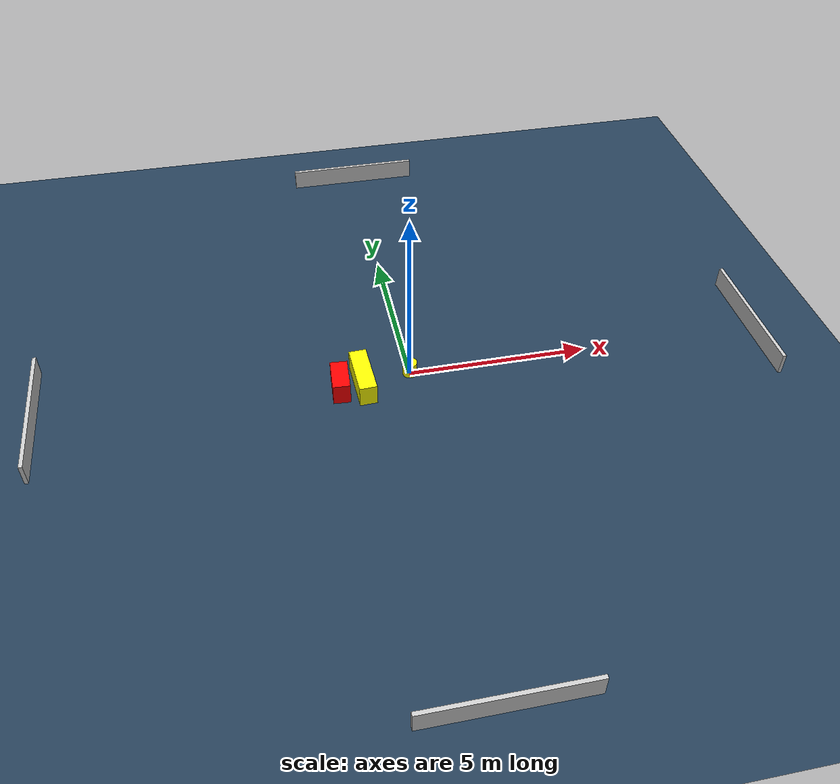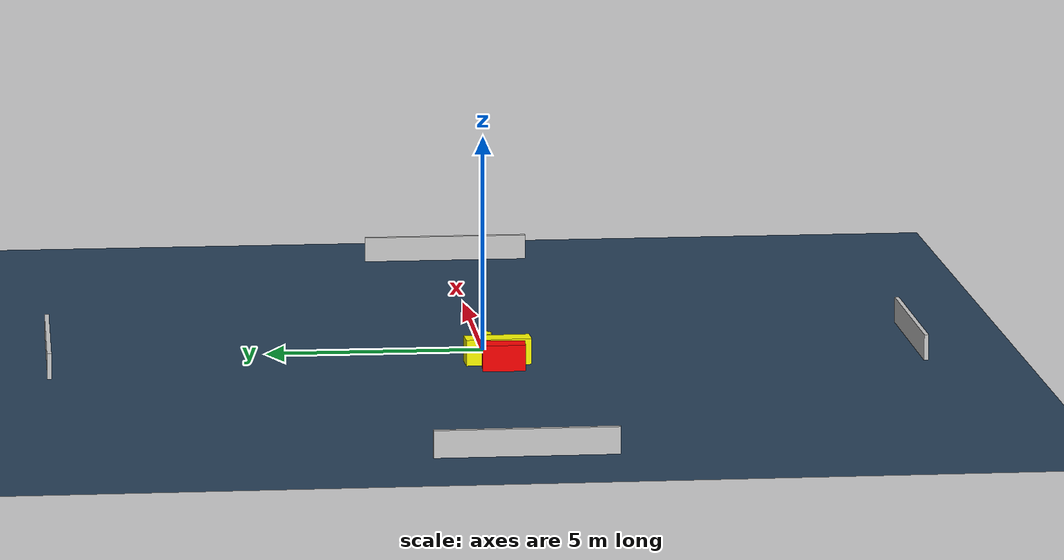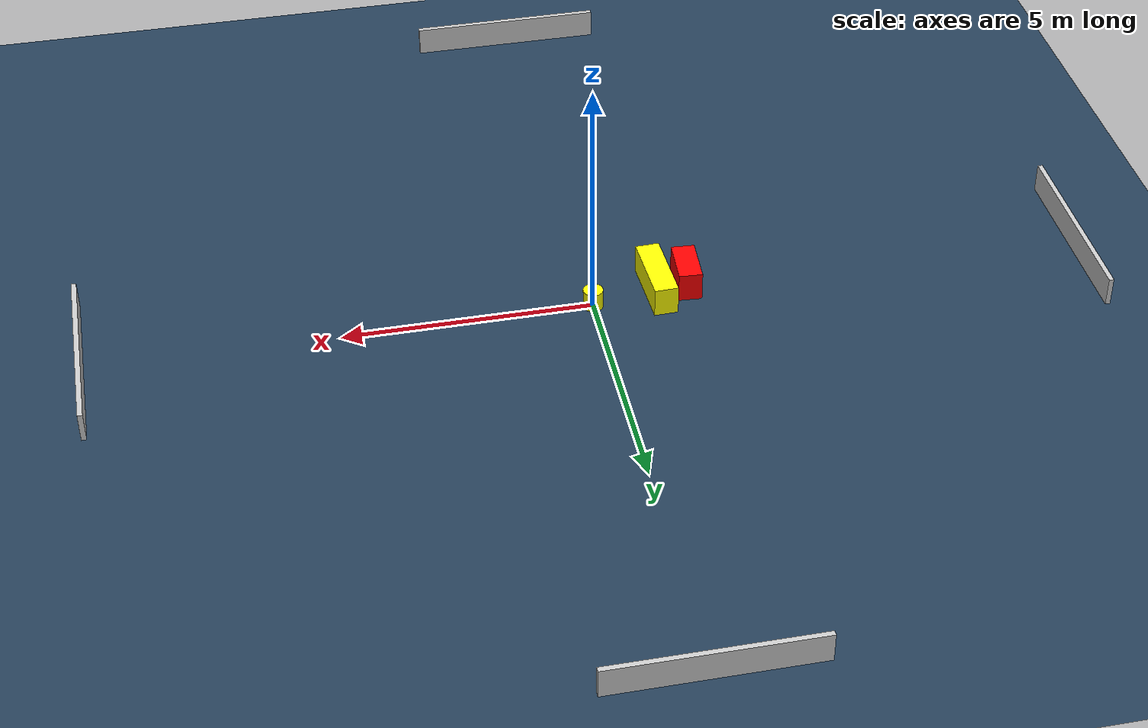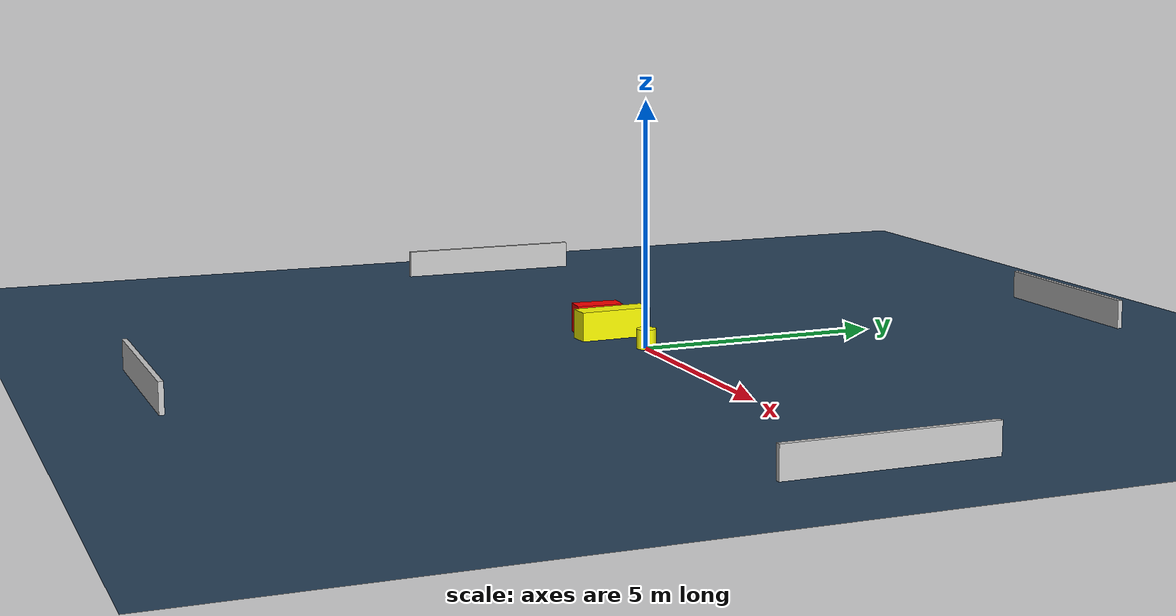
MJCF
<?xml version="1.0" ?>
<mujoco model="generated_environment">
  <option timestep="0.01" integrator="RK4" cone="elliptic"/>
  <default>
    <geom density="1"/>
  </default>
  <asset>
    <texture builtin="gradient" height="3072" name="skybox" rgb1="0.3 0.5 0.7" rgb2="0 0 0" type="skybox" width="512"/>
    <texture builtin="checker" height="300" name="groundplane" rgb1="0.2 0.3 0.4" rgb2="0.1 0.2 0.3" type="2d" width="300"/>
    <material name="groundplane" reflectance="0.2" texrepeat="5 5" texture="groundplane"/>
  </asset>
  <worldbody>
    <light dir="0 0 -1" directional="true" pos="0 0 1.5"/>
    <geom condim="3" friction="0.5 0.005 0.001" material="groundplane" name="floor" pos="0 0 0" size="0 0 0.05" type="plane"/>
    <body name="walls">
      <geom name="wall_1" condim="4" pos="-10.0 0.0 0.3" rgba="0.800000011920929 0.800000011920929 0.800000011920929 1.0" size="0.05 2.0 0.3" type="box"/>
      <geom name="wall_2" condim="4" pos="10.0 0.0 0.3" rgba="0.800000011920929 0.800000011920929 0.800000011920929 1.0" size="0.05 2.0 0.3" type="box"/>
      <geom name="wall_3" condim="4" pos="0.0 -10.0 0.3" rgba="0.800000011920929 0.800000011920929 0.800000011920929 1.0" size="2.0 0.05 0.3" type="box"/>
      <geom name="wall_4" condim="4" pos="0.0 10.0 0.3" rgba="0.800000011920929 0.800000011920929 0.800000011920929 1.0" size="2.0 0.05 0.3" type="box"/>
    </body>
    <body name="robot">
      <joint name="joint_x" type="slide" pos="0 0 0" axis="1 0 0"/>
      <joint name="joint_y" type="slide" pos="0 0 0" axis="0 1 0"/>
      <geom name="robot" type="cylinder" pos="0.0 0.0 0.2" size="0.2 0.2 0.0" mass="5.0" friction="1.0 0.005 0.0001" condim="4" rgba="1.0 1.0 0.0 1.0"/>
    </body>
    <body name="obstacle_1_movable">
      <geom name="obstacle_1_movable" condim="4" pos="-1.332764958208568 -0.21378491371997813 0.3" euler="0 0 2.2323309116515944" friction="0.0 0.005 0.001" rgba="1.0 1.0 0.0 1.0" size="0.24071847706690402 0.7524838284320294 0.3" type="box" mass="0.1"/>
      <joint type="free"/>
    </body>
    <body name="obstacle_2_static">
      <geom name="obstacle_2_static" condim="4" pos="-1.9603617816401975 -0.29275603425627594 0.3" euler="0 0 176.44059288219572" friction="0.0 0.005 0.001" rgba="1.0 0.0 0.0 1.0" size="0.23578997883602376 0.48744178435545465 0.3" type="box"/>
    </body>
  </worldbody>
  <actuator>
    <motor name="actuator_x" joint="joint_x" gear="1" ctrlrange="-1 1"/>
    <motor name="actuator_y" joint="joint_y" gear="1" ctrlrange="-1 1"/>
  </actuator>
</mujoco>
